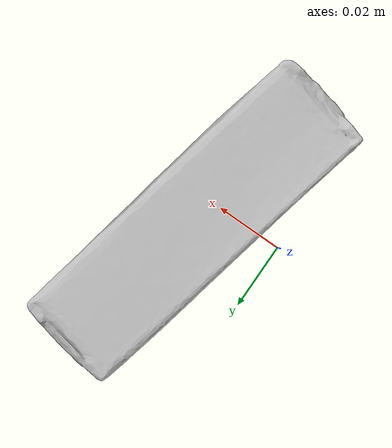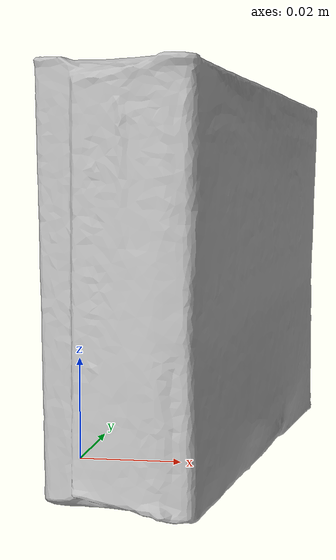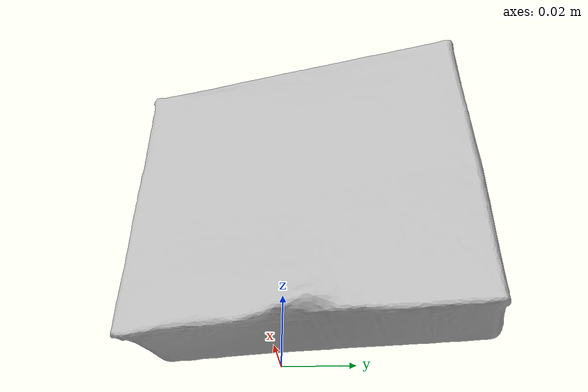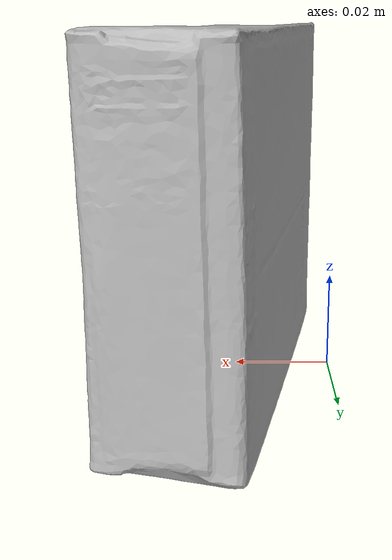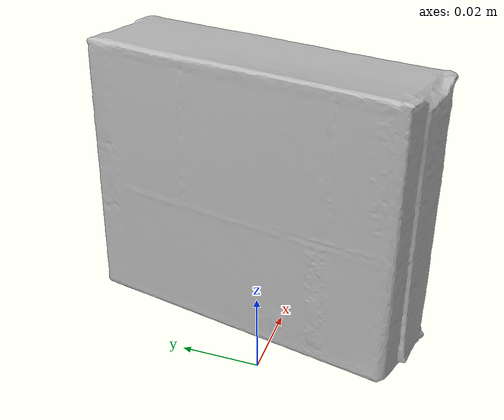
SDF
<?xml version="1.0"?>
<sdf version="1.6">
  <model name="gelatin_box">
    <link name="link">
      <inertial>
        <mass>0.097</mass>
      </inertial>
      <collision name="collision">
        <pose>0 0 0.014 0 0 0</pose>
        <geometry>
          <box>
            <size>0.073 0.085 0.028</size>
          </box>
        </geometry>
      </collision>
      <visual name="visual">
        <pose>0.025 0.005 0 0 0 -0.2</pose>
        <geometry>
          <mesh>
            <uri>model://gelatin_box/meshes/textured.dae</uri>
          </mesh>
        </geometry>
      </visual>
    </link>
  </model>
</sdf>
